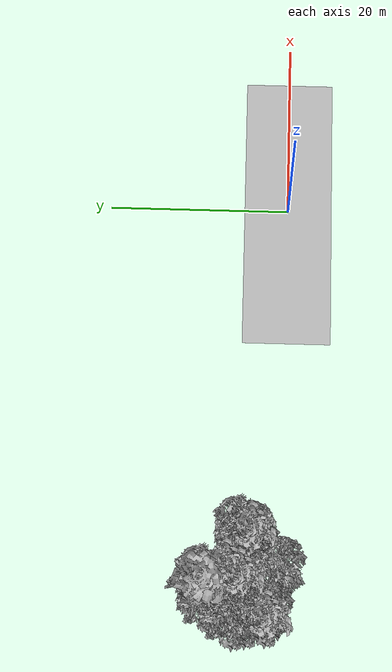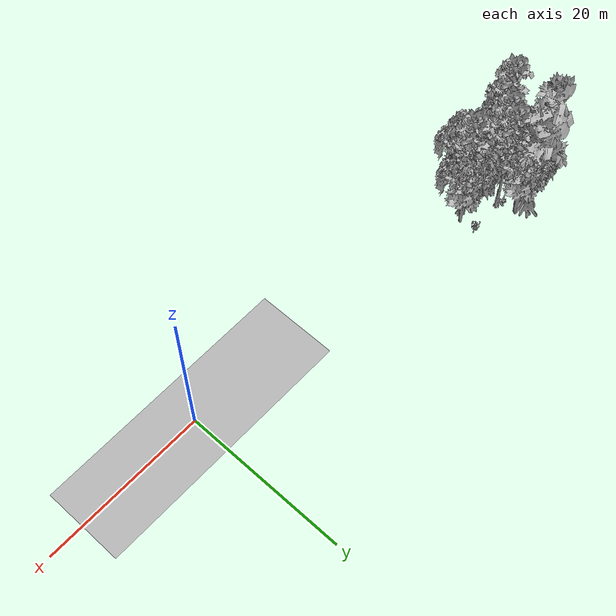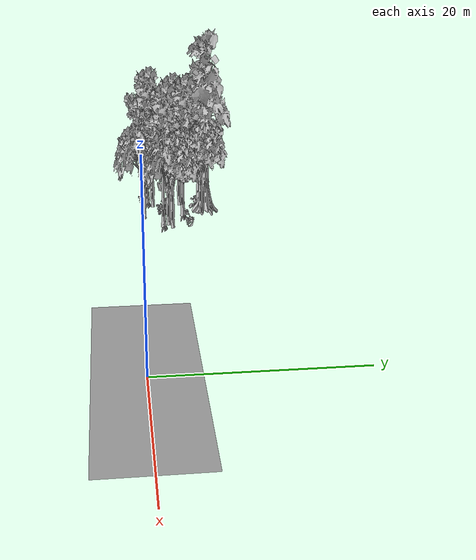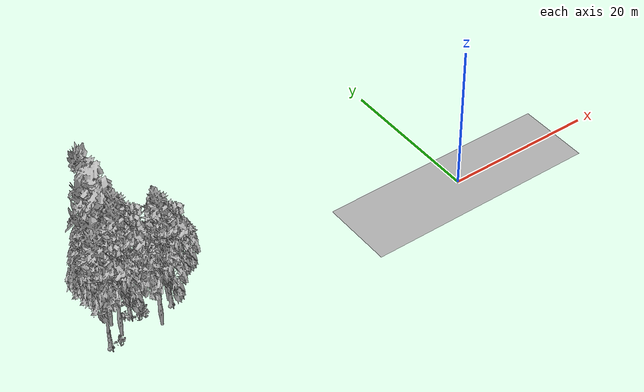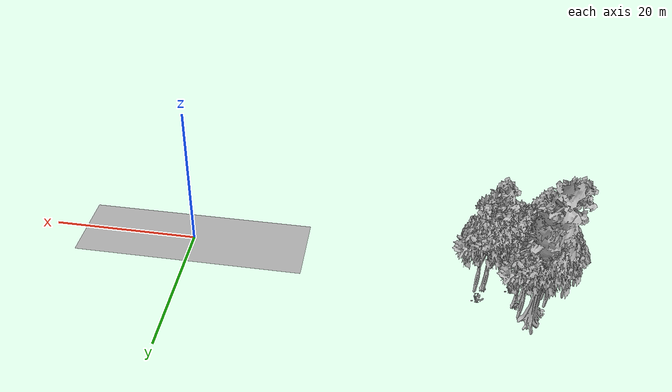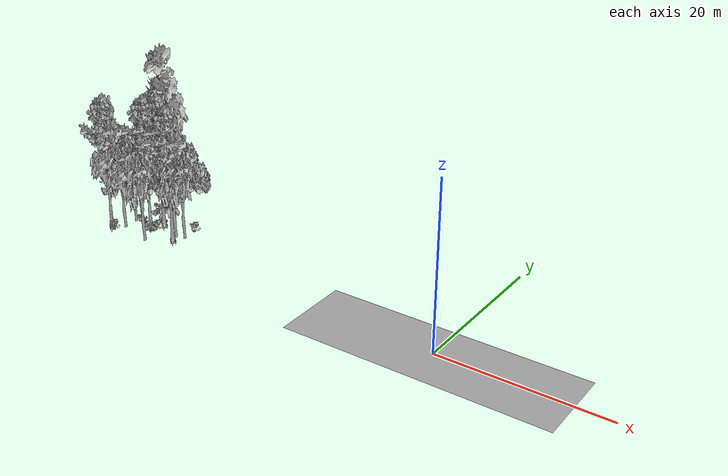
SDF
<sdf version="1.7">
 <world name="default">
  <model name="ground_plane">
   <static>1</static>
   <link name="link">
    <collision name="collision">
     <geometry><plane><normal>0 0 1</normal><size>100 100</size></plane></geometry>
     <surface><contact><ode><min_depth>0.01</min_depth><max_vel>0</max_vel></ode></contact></surface>
    </collision>
    <visual name="grass">
     <cast_shadows>0</cast_shadows>
     <geometry>
      <mesh>
       <scale>0.5814285714285714 0.18142857142857144 0.1</scale>
       <uri>file://grass_plane/meshes/grass_plane.dae</uri>
      </mesh>
     </geometry>
    </visual>
   </link>
  </model>
  <model name="Tree 34">
   <static>1</static>
   <pose>-45.58877833567233 8.194199561160499 0 1.57079 -0 0</pose>
   <link name="link">
    <collision name="collision">
     <geometry><mesh><scale>3.5 5 3.5</scale><uri>model://tree_2/meshes/tree_2.obj</uri></mesh></geometry>
    </collision>
    <visual name="visual">
     <geometry><mesh><scale>3.5 5 3.5</scale><uri>model://tree_2/meshes/tree_2.obj</uri></mesh></geometry>
    </visual>
   </link>
  </model>
  <model name="Tree 36">
   <static>1</static>
   <pose>-43.83291956878647 8.347638240346459 0 1.57079 -0 0</pose>
   <link name="link">
    <collision name="collision">
     <geometry><mesh><scale>3.5 5 3.5</scale><uri>model://tree_2/meshes/tree_2.obj</uri></mesh></geometry>
    </collision>
    <visual name="visual">
     <geometry><mesh><scale>3.5 5 3.5</scale><uri>model://tree_2/meshes/tree_2.obj</uri></mesh></geometry>
    </visual>
   </link>
  </model>
  <model name="Tree 146">
   <static>1</static>
   <pose>-43.38717482828997 6.078404059146511 0 1.57079 -0 0</pose>
   <link name="link">
    <collision name="collision">
     <geometry><mesh><scale>3.5 5 3.5</scale><uri>model://tree_9/meshes/tree_9.obj</uri></mesh></geometry>
    </collision>
    <visual name="visual">
     <geometry><mesh><scale>3.5 5 3.5</scale><uri>model://tree_9/meshes/tree_9.obj</uri></mesh></geometry>
    </visual>
   </link>
  </model>
  <model name="Tree 152">
   <static>1</static>
   <pose>-42.22316231580837 1.2723048662189207 0 1.57079 -0 0</pose>
   <link name="link">
    <collision name="collision">
     <geometry><mesh><scale>3.5 5 3.5</scale><uri>model://tree_2/meshes/tree_2.obj</uri></mesh></geometry>
    </collision>
    <visual name="visual">
     <geometry><mesh><scale>3.5 5 3.5</scale><uri>model://tree_2/meshes/tree_2.obj</uri></mesh></geometry>
    </visual>
   </link>
  </model>
  <model name="Tree 175">
   <static>1</static>
   <pose>-48.520878953463445 1.8990622079751098 0 1.57079 -0 0</pose>
   <link name="link">
    <collision name="collision">
     <geometry><mesh><scale>3.5 5 3.5</scale><uri>model://tree_9/meshes/tree_9.obj</uri></mesh></geometry>
    </collision>
    <visual name="visual">
     <geometry><mesh><scale>3.5 5 3.5</scale><uri>model://tree_9/meshes/tree_9.obj</uri></mesh></geometry>
    </visual>
   </link>
  </model>
  <model name="Tree 187">
   <static>1</static>
   <pose>-38.52869664528812 4.526109702320262 0 1.57079 -0 0</pose>
   <link name="link">
    <collision name="collision">
     <geometry><mesh><scale>3.5 5 3.5</scale><uri>model://tree_2/meshes/tree_2.obj</uri></mesh></geometry>
    </collision>
    <visual name="visual">
     <geometry><mesh><scale>3.5 5 3.5</scale><uri>model://tree_2/meshes/tree_2.obj</uri></mesh></geometry>
    </visual>
   </link>
  </model>
  <model name="Tree 242">
   <static>1</static>
   <pose>-46.92800898900868 4.557581033941659 0 1.57079 -0 0</pose>
   <link name="link">
    <collision name="collision">
     <geometry><mesh><scale>3.5 5 3.5</scale><uri>model://tree_2/meshes/tree_2.obj</uri></mesh></geometry>
    </collision>
    <visual name="visual">
     <geometry><mesh><scale>3.5 5 3.5</scale><uri>model://tree_2/meshes/tree_2.obj</uri></mesh></geometry>
    </visual>
   </link>
  </model>
  <model name="Tree 275">
   <static>1</static>
   <pose>-44.360599731660784 4.647861161510811 0 1.57079 -0 0</pose>
   <link name="link">
    <collision name="collision">
     <geometry><mesh><scale>3.5 5 3.5</scale><uri>model://tree_9/meshes/tree_9.obj</uri></mesh></geometry>
    </collision>
    <visual name="visual">
     <geometry><mesh><scale>3.5 5 3.5</scale><uri>model://tree_9/meshes/tree_9.obj</uri></mesh></geometry>
    </visual>
   </link>
  </model>
  <model name="Tree 314">
   <static>1</static>
   <pose>-46.760318809259104 2.5027235540839676 0 1.57079 -0 0</pose>
   <link name="link">
    <collision name="collision">
     <geometry><mesh><scale>3.5 5 3.5</scale><uri>model://tree_2/meshes/tree_2.obj</uri></mesh></geometry>
    </collision>
    <visual name="visual">
     <geometry><mesh><scale>3.5 5 3.5</scale><uri>model://tree_2/meshes/tree_2.obj</uri></mesh></geometry>
    </visual>
   </link>
  </model>
  <model name="Tree 329">
   <static>1</static>
   <pose>-47.16182814747853 5.88045132934176 0 1.57079 -0 0</pose>
   <link name="link">
    <collision name="collision">
     <geometry><mesh><scale>3.5 5 3.5</scale><uri>model://tree_2/meshes/tree_2.obj</uri></mesh></geometry>
    </collision>
    <visual name="visual">
     <geometry><mesh><scale>3.5 5 3.5</scale><uri>model://tree_2/meshes/tree_2.obj</uri></mesh></geometry>
    </visual>
   </link>
  </model>
  <model name="Tree 368">
   <static>1</static>
   <pose>-45.08788159735771 8.972947624093685 0 1.57079 -0 0</pose>
   <link name="link">
    <collision name="collision">
     <geometry><mesh><scale>3.5 5 3.5</scale><uri>model://tree_4/meshes/tree_4.obj</uri></mesh></geometry>
    </collision>
    <visual name="visual">
     <geometry><mesh><scale>3.5 5 3.5</scale><uri>model://tree_4/meshes/tree_4.obj</uri></mesh></geometry>
    </visual>
   </link>
  </model>
  <model name="Tree 372">
   <static>1</static>
   <pose>-39.62892716793915 4.121141790766302 0 1.57079 -0 0</pose>
   <link name="link">
    <collision name="collision">
     <geometry><mesh><scale>3.5 5 3.5</scale><uri>model://tree_2/meshes/tree_2.obj</uri></mesh></geometry>
    </collision>
    <visual name="visual">
     <geometry><mesh><scale>3.5 5 3.5</scale><uri>model://tree_2/meshes/tree_2.obj</uri></mesh></geometry>
    </visual>
   </link>
  </model>
  <model name="Tree 441">
   <static>1</static>
   <pose>-39.54916940973285 3.522399914145481 0 1.57079 -0 0</pose>
   <link name="link">
    <collision name="collision">
     <geometry><mesh><scale>3.5 5 3.5</scale><uri>model://tree_9/meshes/tree_9.obj</uri></mesh></geometry>
    </collision>
    <visual name="visual">
     <geometry><mesh><scale>3.5 5 3.5</scale><uri>model://tree_9/meshes/tree_9.obj</uri></mesh></geometry>
    </visual>
   </link>
  </model>
  <model name="Bush 30">
   <static>1</static>
   <pose>-45.293417595821026 4.201749882641554 0 1.57079 -0 0</pose>
   <link name="link">
    <collision name="collision">
     <geometry><mesh><scale>2 2 2</scale><uri>model://bush_0/meshes/bush_0.obj</uri></mesh></geometry>
     <surface><contact><collide_without_contact>false</collide_without_contact></contact></surface>
    </collision>
    <visual name="visual">
     <geometry><mesh><scale>2 2 2</scale><uri>model://bush_0/meshes/bush_0.obj</uri></mesh></geometry>
    </visual>
   </link>
  </model>
  <model name="Bush 106">
   <static>1</static>
   <pose>-43.90639272531636 6.385047714295794 0 1.57079 -0 0</pose>
   <link name="link">
    <collision name="collision">
     <geometry><mesh><scale>2 2 2</scale><uri>model://bush_2/meshes/bush_2.obj</uri></mesh></geometry>
     <surface><contact><collide_without_contact>false</collide_without_contact></contact></surface>
    </collision>
    <visual name="visual">
     <geometry><mesh><scale>2 2 2</scale><uri>model://bush_2/meshes/bush_2.obj</uri></mesh></geometry>
    </visual>
   </link>
  </model>
  <model name="Bush 107">
   <static>1</static>
   <pose>-45.94906803433579 7.949895209924687 0 1.57079 -0 0</pose>
   <link name="link">
    <collision name="collision">
     <geometry><mesh><scale>2 2 2</scale><uri>model://bush_0/meshes/bush_0.obj</uri></mesh></geometry>
     <surface><contact><collide_without_contact>false</collide_without_contact></contact></surface>
    </collision>
    <visual name="visual">
     <geometry><mesh><scale>2 2 2</scale><uri>model://bush_0/meshes/bush_0.obj</uri></mesh></geometry>
    </visual>
   </link>
  </model>
  <model name="Bush 130">
   <static>1</static>
   <pose>-43.06403247118575 3.6893792574499074 0 1.57079 -0 0</pose>
   <link name="link">
    <collision name="collision">
     <geometry><mesh><scale>2 2 2</scale><uri>model://bush_3/meshes/bush_3.obj</uri></mesh></geometry>
     <surface><contact><collide_without_contact>false</collide_without_contact></contact></surface>
    </collision>
    <visual name="visual">
     <geometry><mesh><scale>2 2 2</scale><uri>model://bush_3/meshes/bush_3.obj</uri></mesh></geometry>
    </visual>
   </link>
  </model>
  <model name="Bush 194">
   <static>1</static>
   <pose>-42.93959339783669 4.168091864598544 0 1.57079 -0 0</pose>
   <link name="link">
    <collision name="collision">
     <geometry><mesh><scale>2 2 2</scale><uri>model://bush_4/meshes/bush_4.obj</uri></mesh></geometry>
     <surface><contact><collide_without_contact>false</collide_without_contact></contact></surface>
    </collision>
    <visual name="visual">
     <geometry><mesh><scale>2 2 2</scale><uri>model://bush_4/meshes/bush_4.obj</uri></mesh></geometry>
    </visual>
   </link>
  </model>
  <model name="Bush 216">
   <static>1</static>
   <pose>-43.83928353551718 3.307769417161648 0 1.57079 -0 0</pose>
   <link name="link">
    <collision name="collision">
     <geometry><mesh><scale>2 2 2</scale><uri>model://bush_4/meshes/bush_4.obj</uri></mesh></geometry>
     <surface><contact><collide_without_contact>false</collide_without_contact></contact></surface>
    </collision>
    <visual name="visual">
     <geometry><mesh><scale>2 2 2</scale><uri>model://bush_4/meshes/bush_4.obj</uri></mesh></geometry>
    </visual>
   </link>
  </model>
  <model name="Bush 222">
   <static>1</static>
   <pose>-38.6709765303175 6.5223162732056466 0 1.57079 -0 0</pose>
   <link name="link">
    <collision name="collision">
     <geometry><mesh><scale>2 2 2</scale><uri>model://bush_4/meshes/bush_4.obj</uri></mesh></geometry>
     <surface><contact><collide_without_contact>false</collide_without_contact></contact></surface>
    </collision>
    <visual name="visual">
     <geometry><mesh><scale>2 2 2</scale><uri>model://bush_4/meshes/bush_4.obj</uri></mesh></geometry>
    </visual>
   </link>
  </model>
  <model name="Bush 239">
   <static>1</static>
   <pose>-46.36904416787649 7.539208206856486 0 1.57079 -0 0</pose>
   <link name="link">
    <collision name="collision">
     <geometry><mesh><scale>2 2 2</scale><uri>model://bush_2/meshes/bush_2.obj</uri></mesh></geometry>
     <surface><contact><collide_without_contact>false</collide_without_contact></contact></surface>
    </collision>
    <visual name="visual">
     <geometry><mesh><scale>2 2 2</scale><uri>model://bush_2/meshes/bush_2.obj</uri></mesh></geometry>
    </visual>
   </link>
  </model>
  <model name="Bush 273">
   <static>1</static>
   <pose>-47.51506428158476 1.20687029194087 0 1.57079 -0 0</pose>
   <link name="link">
    <collision name="collision">
     <geometry><mesh><scale>2 2 2</scale><uri>model://bush_4/meshes/bush_4.obj</uri></mesh></geometry>
     <surface><contact><collide_without_contact>false</collide_without_contact></contact></surface>
    </collision>
    <visual name="visual">
     <geometry><mesh><scale>2 2 2</scale><uri>model://bush_4/meshes/bush_4.obj</uri></mesh></geometry>
    </visual>
   </link>
  </model>
 </world>
</sdf>
